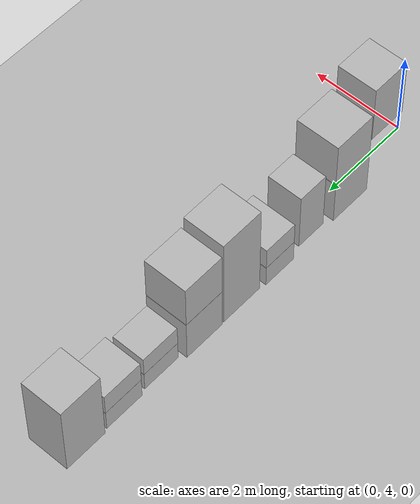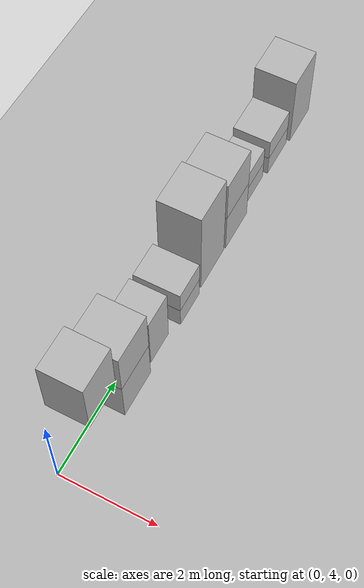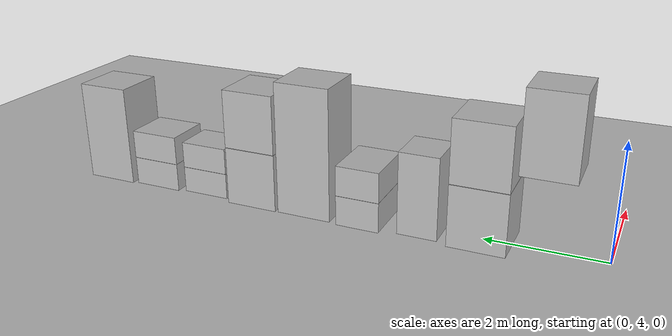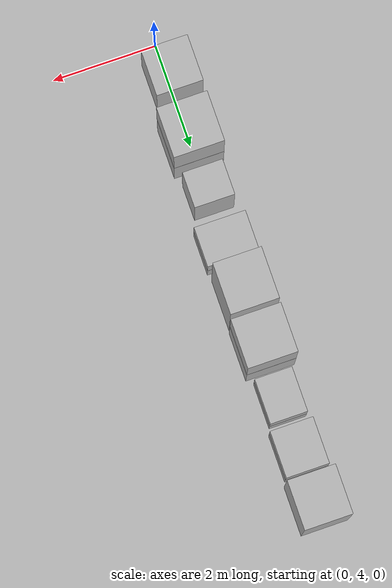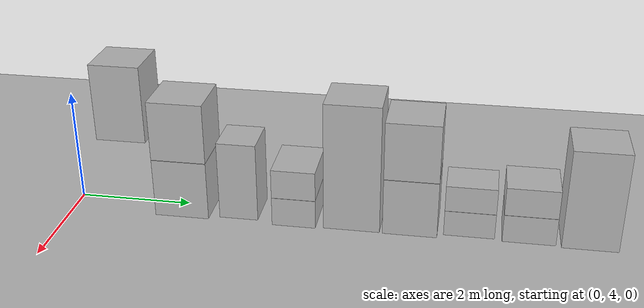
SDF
<sdf version="1.5">
 <world name="default">
  <model name="ground_plane">
   <static>true</static>
   <link name="link">
    <collision name="collision">
     <geometry><plane><normal>0 0 1</normal><size>250 250</size></plane></geometry>
     <surface><friction><ode><mu>1</mu><mu2>1</mu2></ode></friction></surface>
    </collision>
    <visual name="grass">
     <cast_shadows>false</cast_shadows>
     <geometry><mesh><uri>file://grass_plane/meshes/grass_plane.dae</uri></mesh></geometry>
    </visual>
   </link>
  </model>
  <model name="Cardboard_box_top_475">
   <link name="link_0">
    <pose>0 5 1.38116374162 0 0 0</pose>
    <inertial>
     <mass>1</mass>
     <inertia>
      <ixx>0.166667</ixx>
      <ixy>0</ixy>
      <ixz>0</ixz>
      <iyy>0.166667</iyy>
      <iyz>0</iyz>
      <izz>0.166667</izz>
     </inertia>
    </inertial>
    <collision name="collision">
     <geometry>
      <mesh>
       <uri>model://Cardboard_box/meshes/cardboard_box.dae</uri>
       <scale>2.1914703499 2.18904511199 3.45290935406</scale>
      </mesh>
     </geometry>
    </collision>
    <visual name="visual">
     <geometry>
      <mesh>
       <uri>model://Cardboard_box/meshes/cardboard_box.dae</uri>
       <scale>2.1914703499 2.18904511199 3.45290935406</scale>
      </mesh>
     </geometry>
    </visual>
   </link>
   <static>1</static>
  </model>
  <model name="Cardboard_box_476">
   <link name="link_0">
    <pose>0 6 0 0 0 0</pose>
    <inertial>
     <mass>1</mass>
     <inertia>
      <ixx>0.166667</ixx>
      <ixy>0</ixy>
      <ixz>0</ixz>
      <iyy>0.166667</iyy>
      <iyz>0</iyz>
      <izz>0.166667</izz>
     </inertia>
    </inertial>
    <collision name="collision">
     <geometry>
      <mesh>
       <uri>model://Cardboard_box/meshes/cardboard_box.dae</uri>
       <scale>2.41347639686 2.41465056707 2.70851167508</scale>
      </mesh>
     </geometry>
    </collision>
    <visual name="visual">
     <geometry>
      <mesh>
       <uri>model://Cardboard_box/meshes/cardboard_box.dae</uri>
       <scale>2.41347639686 2.41465056707 2.70851167508</scale>
      </mesh>
     </geometry>
    </visual>
   </link>
   <static>1</static>
  </model>
  <model name="Cardboard_box_top_476">
   <link name="link_0">
    <pose>0 6 1.08340467003 0 0 0</pose>
    <inertial>
     <mass>1</mass>
     <inertia>
      <ixx>0.166667</ixx>
      <ixy>0</ixy>
      <ixz>0</ixz>
      <iyy>0.166667</iyy>
      <iyz>0</iyz>
      <izz>0.166667</izz>
     </inertia>
    </inertial>
    <collision name="collision">
     <geometry>
      <mesh>
       <uri>model://Cardboard_box/meshes/cardboard_box.dae</uri>
       <scale>2.41347639686 2.41465056707 2.70851167508</scale>
      </mesh>
     </geometry>
    </collision>
    <visual name="visual">
     <geometry>
      <mesh>
       <uri>model://Cardboard_box/meshes/cardboard_box.dae</uri>
       <scale>2.41347639686 2.41465056707 2.70851167508</scale>
      </mesh>
     </geometry>
    </visual>
   </link>
   <static>1</static>
  </model>
  <model name="Cardboard_box_477">
   <link name="link_0">
    <pose>0 7 0 0 0 0</pose>
    <inertial>
     <mass>1</mass>
     <inertia>
      <ixx>0.166667</ixx>
      <ixy>0</ixy>
      <ixz>0</ixz>
      <iyy>0.166667</iyy>
      <iyz>0</iyz>
      <izz>0.166667</izz>
     </inertia>
    </inertial>
    <collision name="collision">
     <geometry>
      <mesh>
       <uri>model://Cardboard_box/meshes/cardboard_box.dae</uri>
       <scale>1.9317862751 1.71819317436 3.62044849063</scale>
      </mesh>
     </geometry>
    </collision>
    <visual name="visual">
     <geometry>
      <mesh>
       <uri>model://Cardboard_box/meshes/cardboard_box.dae</uri>
       <scale>1.9317862751 1.71819317436 3.62044849063</scale>
      </mesh>
     </geometry>
    </visual>
   </link>
   <static>1</static>
  </model>
  <model name="Cardboard_box_478">
   <link name="link_0">
    <pose>0 8 0 0 0 0</pose>
    <inertial>
     <mass>1</mass>
     <inertia>
      <ixx>0.166667</ixx>
      <ixy>0</ixy>
      <ixz>0</ixz>
      <iyy>0.166667</iyy>
      <iyz>0</iyz>
      <izz>0.166667</izz>
     </inertia>
    </inertial>
    <collision name="collision">
     <geometry>
      <mesh>
       <uri>model://Cardboard_box/meshes/cardboard_box.dae</uri>
       <scale>2.48333312738 1.91723901942 1.33077181831</scale>
      </mesh>
     </geometry>
    </collision>
    <visual name="visual">
     <geometry>
      <mesh>
       <uri>model://Cardboard_box/meshes/cardboard_box.dae</uri>
       <scale>2.48333312738 1.91723901942 1.33077181831</scale>
      </mesh>
     </geometry>
    </visual>
   </link>
   <static>1</static>
  </model>
  <model name="Cardboard_box_top_478">
   <link name="link_0">
    <pose>0 8 0.532308727324 0 0 0</pose>
    <inertial>
     <mass>1</mass>
     <inertia>
      <ixx>0.166667</ixx>
      <ixy>0</ixy>
      <ixz>0</ixz>
      <iyy>0.166667</iyy>
      <iyz>0</iyz>
      <izz>0.166667</izz>
     </inertia>
    </inertial>
    <collision name="collision">
     <geometry>
      <mesh>
       <uri>model://Cardboard_box/meshes/cardboard_box.dae</uri>
       <scale>2.48333312738 1.91723901942 1.33077181831</scale>
      </mesh>
     </geometry>
    </collision>
    <visual name="visual">
     <geometry>
      <mesh>
       <uri>model://Cardboard_box/meshes/cardboard_box.dae</uri>
       <scale>2.48333312738 1.91723901942 1.33077181831</scale>
      </mesh>
     </geometry>
    </visual>
   </link>
   <static>1</static>
  </model>
  <model name="Cardboard_box_479">
   <link name="link_0">
    <pose>0 9 0 0 0 0</pose>
    <inertial>
     <mass>1</mass>
     <inertia>
      <ixx>0.166667</ixx>
      <ixy>0</ixy>
      <ixz>0</ixz>
      <iyy>0.166667</iyy>
      <iyz>0</iyz>
      <izz>0.166667</izz>
     </inertia>
    </inertial>
    <collision name="collision">
     <geometry>
      <mesh>
       <uri>model://Cardboard_box/meshes/cardboard_box.dae</uri>
       <scale>2.30333547689 2.44695384348 5.87028147833</scale>
      </mesh>
     </geometry>
    </collision>
    <visual name="visual">
     <geometry>
      <mesh>
       <uri>model://Cardboard_box/meshes/cardboard_box.dae</uri>
       <scale>2.30333547689 2.44695384348 5.87028147833</scale>
      </mesh>
     </geometry>
    </visual>
   </link>
   <static>1</static>
  </model>
  <model name="Cardboard_box_480">
   <link name="link_0">
    <pose>0 10 0 0 0 0</pose>
    <inertial>
     <mass>1</mass>
     <inertia>
      <ixx>0.166667</ixx>
      <ixy>0</ixy>
      <ixz>0</ixz>
      <iyy>0.166667</iyy>
      <iyz>0</iyz>
      <izz>0.166667</izz>
     </inertia>
    </inertial>
    <collision name="collision">
     <geometry>
      <mesh>
       <uri>model://Cardboard_box/meshes/cardboard_box.dae</uri>
       <scale>2.37214222652 2.34122359917 2.60636596596</scale>
      </mesh>
     </geometry>
    </collision>
    <visual name="visual">
     <geometry>
      <mesh>
       <uri>model://Cardboard_box/meshes/cardboard_box.dae</uri>
       <scale>2.37214222652 2.34122359917 2.60636596596</scale>
      </mesh>
     </geometry>
    </visual>
   </link>
   <static>1</static>
  </model>
  <model name="Cardboard_box_top_480">
   <link name="link_0">
    <pose>0 10 1.04254638639 0 0 0</pose>
    <inertial>
     <mass>1</mass>
     <inertia>
      <ixx>0.166667</ixx>
      <ixy>0</ixy>
      <ixz>0</ixz>
      <iyy>0.166667</iyy>
      <iyz>0</iyz>
      <izz>0.166667</izz>
     </inertia>
    </inertial>
    <collision name="collision">
     <geometry>
      <mesh>
       <uri>model://Cardboard_box/meshes/cardboard_box.dae</uri>
       <scale>2.37214222652 2.34122359917 2.60636596596</scale>
      </mesh>
     </geometry>
    </collision>
    <visual name="visual">
     <geometry>
      <mesh>
       <uri>model://Cardboard_box/meshes/cardboard_box.dae</uri>
       <scale>2.37214222652 2.34122359917 2.60636596596</scale>
      </mesh>
     </geometry>
    </visual>
   </link>
   <static>1</static>
  </model>
  <model name="Cardboard_box_481">
   <link name="link_0">
    <pose>0 11 0 0 0 0</pose>
    <inertial>
     <mass>1</mass>
     <inertia>
      <ixx>0.166667</ixx>
      <ixy>0</ixy>
      <ixz>0</ixz>
      <iyy>0.166667</iyy>
      <iyz>0</iyz>
      <izz>0.166667</izz>
     </inertia>
    </inertial>
    <collision name="collision">
     <geometry>
      <mesh>
       <uri>model://Cardboard_box/meshes/cardboard_box.dae</uri>
       <scale>1.79431535558 2.16647348307 1.17874301679</scale>
      </mesh>
     </geometry>
    </collision>
    <visual name="visual">
     <geometry>
      <mesh>
       <uri>model://Cardboard_box/meshes/cardboard_box.dae</uri>
       <scale>1.79431535558 2.16647348307 1.17874301679</scale>
      </mesh>
     </geometry>
    </visual>
   </link>
   <static>1</static>
  </model>
  <model name="Cardboard_box_top_481">
   <link name="link_0">
    <pose>0 11 0.471497206714 0 0 0</pose>
    <inertial>
     <mass>1</mass>
     <inertia>
      <ixx>0.166667</ixx>
      <ixy>0</ixy>
      <ixz>0</ixz>
      <iyy>0.166667</iyy>
      <iyz>0</iyz>
      <izz>0.166667</izz>
     </inertia>
    </inertial>
    <collision name="collision">
     <geometry>
      <mesh>
       <uri>model://Cardboard_box/meshes/cardboard_box.dae</uri>
       <scale>1.79431535558 2.16647348307 1.17874301679</scale>
      </mesh>
     </geometry>
    </collision>
    <visual name="visual">
     <geometry>
      <mesh>
       <uri>model://Cardboard_box/meshes/cardboard_box.dae</uri>
       <scale>1.79431535558 2.16647348307 1.17874301679</scale>
      </mesh>
     </geometry>
    </visual>
   </link>
   <static>1</static>
  </model>
  <model name="Cardboard_box_482">
   <link name="link_0">
    <pose>0 12 0 0 0 0</pose>
    <inertial>
     <mass>1</mass>
     <inertia>
      <ixx>0.166667</ixx>
      <ixy>0</ixy>
      <ixz>0</ixz>
      <iyy>0.166667</iyy>
      <iyz>0</iyz>
      <izz>0.166667</izz>
     </inertia>
    </inertial>
    <collision name="collision">
     <geometry>
      <mesh>
       <uri>model://Cardboard_box/meshes/cardboard_box.dae</uri>
       <scale>2.06462967408 2.2416275327 1.28106682325</scale>
      </mesh>
     </geometry>
    </collision>
    <visual name="visual">
     <geometry>
      <mesh>
       <uri>model://Cardboard_box/meshes/cardboard_box.dae</uri>
       <scale>2.06462967408 2.2416275327 1.28106682325</scale>
      </mesh>
     </geometry>
    </visual>
   </link>
   <static>1</static>
  </model>
  <model name="Cardboard_box_top_482">
   <link name="link_0">
    <pose>0 12 0.5124267293 0 0 0</pose>
    <inertial>
     <mass>1</mass>
     <inertia>
      <ixx>0.166667</ixx>
      <ixy>0</ixy>
      <ixz>0</ixz>
      <iyy>0.166667</iyy>
      <iyz>0</iyz>
      <izz>0.166667</izz>
     </inertia>
    </inertial>
    <collision name="collision">
     <geometry>
      <mesh>
       <uri>model://Cardboard_box/meshes/cardboard_box.dae</uri>
       <scale>2.06462967408 2.2416275327 1.28106682325</scale>
      </mesh>
     </geometry>
    </collision>
    <visual name="visual">
     <geometry>
      <mesh>
       <uri>model://Cardboard_box/meshes/cardboard_box.dae</uri>
       <scale>2.06462967408 2.2416275327 1.28106682325</scale>
      </mesh>
     </geometry>
    </visual>
   </link>
   <static>1</static>
  </model>
  <model name="Cardboard_box_483">
   <link name="link_0">
    <pose>0 13 0 0 0 0</pose>
    <inertial>
     <mass>1</mass>
     <inertia>
      <ixx>0.166667</ixx>
      <ixy>0</ixy>
      <ixz>0</ixz>
      <iyy>0.166667</iyy>
      <iyz>0</iyz>
      <izz>0.166667</izz>
     </inertia>
    </inertial>
    <collision name="collision">
     <geometry>
      <mesh>
       <uri>model://Cardboard_box/meshes/cardboard_box.dae</uri>
       <scale>2.28152558736 2.35943906225 4.53569748063</scale>
      </mesh>
     </geometry>
    </collision>
    <visual name="visual">
     <geometry>
      <mesh>
       <uri>model://Cardboard_box/meshes/cardboard_box.dae</uri>
       <scale>2.28152558736 2.35943906225 4.53569748063</scale>
      </mesh>
     </geometry>
    </visual>
   </link>
   <static>1</static>
  </model>
 </world>
</sdf>
